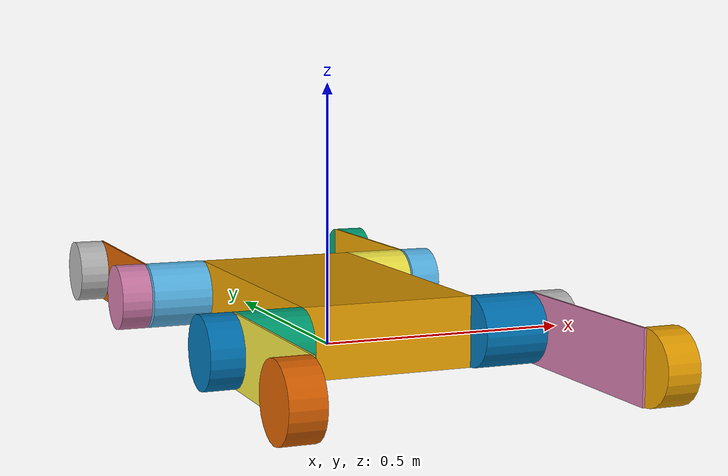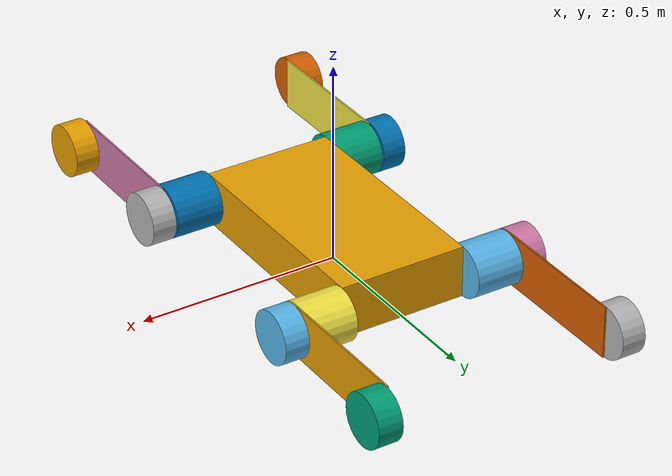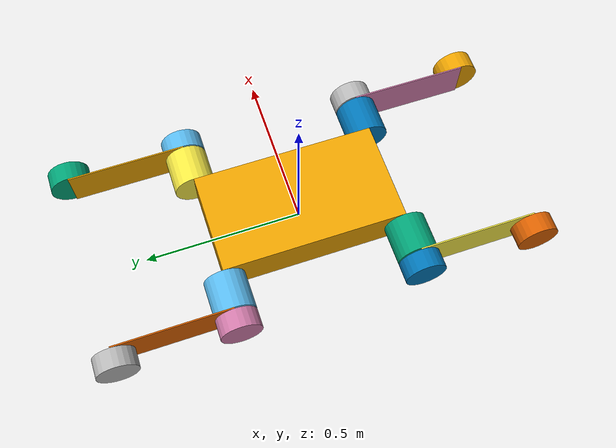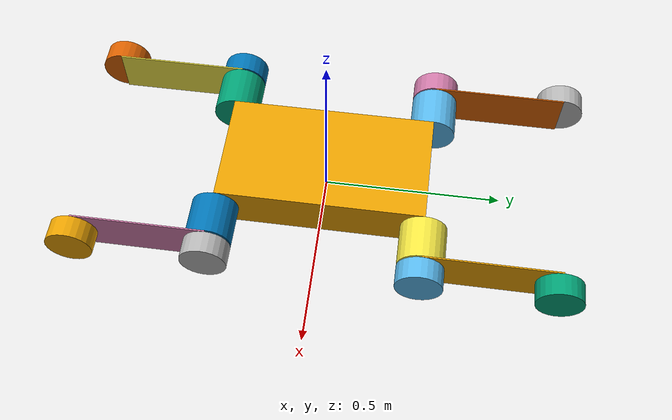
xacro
<?xml version="1.0" ?>
<!--       simulation model of crawler robot in UGVC 2016         -->
<robot name="ugvc_crawler_robot">

  <joint name="ugvc_crawler_robot__right_rear" type="revolute">
    <parent link="ugvc_crawler_robot__chassis"/>
    <child link="ugvc_crawler_robot__right_rear_wheel"/>
    <origin rpy="0      1.5707  0" xyz="-0.16     0.28999  0.065"/>
    <axis xyz="9.00000000e-05   0.00000000e+00   1.00000000e+00"/>
    <limit effort="0" lower="0" upper="0" velocity="0"/>
  </joint>

  <joint name="ugvc_crawler_robot__right_front" type="revolute">
    <parent link="ugvc_crawler_robot__chassis"/>
    <child link="ugvc_crawler_robot__right_front_wheel"/>
    <origin rpy="0      1.5707  0" xyz="-0.16    -0.28999  0.065"/>
    <axis xyz="9.00000000e-05   0.00000000e+00   1.00000000e+00"/>
    <limit effort="0" lower="0" upper="0" velocity="0"/>
  </joint>
  <joint name="ugvc_crawler_robot__left_rear" type="revolute">
    <parent link="ugvc_crawler_robot__chassis"/>
    <child link="ugvc_crawler_robot__left_rear_wheel"/>
    <origin rpy="0      1.5707  0" xyz="0.16     0.28999  0.06499"/>
    <axis xyz="9.00000000e-05   0.00000000e+00   1.00000000e+00"/>
    <limit effort="0" lower="0" upper="0" velocity="0"/>
  </joint>
  <joint name="ugvc_crawler_robot__left_front" type="revolute">
    <parent link="ugvc_crawler_robot__chassis"/>
    <child link="ugvc_crawler_robot__left_front_wheel"/>
    <origin rpy="0      1.5707  0" xyz="0.16    -0.28999  0.06499"/>
    <axis xyz="9.00000000e-05   0.00000000e+00   1.00000000e+00"/>
    <limit effort="0" lower="0" upper="0" velocity="0"/>
  </joint>
  <joint name="ugvc_crawler_robot__left_rear_flipper" type="revolute">
    <parent link="ugvc_crawler_robot__chassis"/>
    <child link="ugvc_crawler_robot__left_rear_flipper"/>
    <origin rpy="0  0  0" xyz="0.28199  0.28999  0.067"/>
    <axis xyz="1  0  0"/>
    <limit effort="0.0" lower="0.0" upper="0.0" velocity="1.0"/>
  </joint>
  <joint name="ugvc_crawler_robot__right_rear_flipper" type="revolute">
    <parent link="ugvc_crawler_robot__chassis"/>
    <child link="ugvc_crawler_robot__right_rear_flipper"/>
    <origin rpy="0  0  0" xyz="-0.28199  0.28999  0.063"/>
    <axis xyz="1  0  0"/>
    <limit effort="0.0" lower="0.0" upper="0.0" velocity="1.0"/>
  </joint>
  <joint name="ugvc_crawler_robot__left_front_flipper" type="revolute">
    <parent link="ugvc_crawler_robot__chassis"/>
    <child link="ugvc_crawler_robot__left_front_flipper"/>
    <origin rpy="0  0  0" xyz="0.28199 -0.28999  0.067"/>
    <axis xyz="1  0  0"/>
    <limit effort="0.0" lower="0.0" upper="0.0" velocity="1.0"/>
  </joint>
  <joint name="ugvc_crawler_robot__right_front_flipper" type="revolute">
    <parent link="ugvc_crawler_robot__chassis"/>
    <child link="ugvc_crawler_robot__right_front_flipper"/>
    <origin rpy="0  0  0" xyz="-0.28199 -0.28999  0.063"/>
    <axis xyz="1  0  0"/>
    <limit effort="0.0" lower="0.0" upper="0.0" velocity="1.0"/>
  </joint>
  <joint name="ugvc_crawler_robot__right_rear_flipper_wheel_1" type="revolute">
    <parent link="ugvc_crawler_robot__right_rear_flipper"/>
    <child link="ugvc_crawler_robot__right_rear_flipper_wheel_1"/>
    <origin rpy="0      1.5707  0" xyz="-0.002  0     0.002"/>
    <axis xyz="9.00000000e-05   0.00000000e+00   1.00000000e+00"/>
    <limit effort="0" lower="0" upper="0" velocity="0"/>
  </joint>
  <joint name="ugvc_crawler_robot__right_rear_flipper_wheel_2" type="revolute">
    <parent link="ugvc_crawler_robot__right_rear_flipper"/>
    <child link="ugvc_crawler_robot__right_rear_flipper_wheel_2"/>
    <origin rpy="0      1.5707  0" xyz="-0.002  0.37   0.002"/>
    <axis xyz="9.00000000e-05   0.00000000e+00   1.00000000e+00"/>
    <limit effort="0" lower="0" upper="0" velocity="0"/>
  </joint>
  <joint name="ugvc_crawler_robot__right_front_flipper_wheel_1" type="revolute">
    <parent link="ugvc_crawler_robot__right_front_flipper"/>
    <child link="ugvc_crawler_robot__right_front_flipper_wheel_1"/>
    <origin rpy="0      1.5707  0" xyz="-0.002  0     0.002"/>
    <axis xyz="9.00000000e-05   0.00000000e+00   1.00000000e+00"/>
    <limit effort="0" lower="0" upper="0" velocity="0"/>
  </joint>
  <joint name="ugvc_crawler_robot__right_front_flipper_wheel_2" type="revolute">
    <parent link="ugvc_crawler_robot__right_front_flipper"/>
    <child link="ugvc_crawler_robot__right_front_flipper_wheel_2"/>
    <origin rpy="0      1.5707  0" xyz="-0.002 -0.37   0.002"/>
    <axis xyz="9.00000000e-05   0.00000000e+00   1.00000000e+00"/>
    <limit effort="0" lower="0" upper="0" velocity="0"/>
  </joint>
  <joint name="ugvc_crawler_robot__left_rear_flipper_wheel_1" type="revolute">
    <parent link="ugvc_crawler_robot__left_rear_flipper"/>
    <child link="ugvc_crawler_robot__left_rear_flipper_wheel_1"/>
    <origin rpy="0      1.5707  0" xyz="0.002  0    -0.002"/>
    <axis xyz="9.00000000e-05   0.00000000e+00   1.00000000e+00"/>
    <limit effort="0" lower="0" upper="0" velocity="0"/>
  </joint>
  <joint name="ugvc_crawler_robot__left_rear_flipper_wheel_2" type="revolute">
    <parent link="ugvc_crawler_robot__left_rear_flipper"/>
    <child link="ugvc_crawler_robot__left_rear_flipper_wheel_2"/>
    <origin rpy="0      1.5707  0" xyz="0.002  0.37  -0.002"/>
    <axis xyz="9.00000000e-05   0.00000000e+00   1.00000000e+00"/>
    <limit effort="0" lower="0" upper="0" velocity="0"/>
  </joint>
  <joint name="ugvc_crawler_robot__left_front_flipper_wheel_1" type="revolute">
    <parent link="ugvc_crawler_robot__left_front_flipper"/>
    <child link="ugvc_crawler_robot__left_front_flipper_wheel_1"/>
    <origin rpy="0      1.5707  0" xyz="0.002  0    -0.002"/>
    <axis xyz="9.00000000e-05   0.00000000e+00   1.00000000e+00"/>
    <limit effort="0" lower="0" upper="0" velocity="0"/>
  </joint>
  <joint name="ugvc_crawler_robot__left_front_flipper_wheel_2" type="revolute">
    <parent link="ugvc_crawler_robot__left_front_flipper"/>
    <child link="ugvc_crawler_robot__left_front_flipper_wheel_2"/>
    <origin rpy="0      1.5707  0" xyz="0.002 -0.37  -0.002"/>
    <axis xyz="9.00000000e-05   0.00000000e+00   1.00000000e+00"/>
    <limit effort="0" lower="0" upper="0" velocity="0"/>
  </joint>

  <link name="ugvc_crawler_robot__chassis">
    <inertial>
      <mass value="20"/>
      <origin rpy="0  0  0" xyz="0     0     0.065"/>
      <inertia ixx="0" ixy="0" ixz="0" iyy="0" iyz="0" izz="0"/>
    </inertial>
    <collision name="ugvc_crawler_robot__collision">
      <origin rpy="0  0  0" xyz="0     0     0.065"/>
      <geometry>
        <box size=".32 .58 .13"/>
      </geometry>
    </collision>
    <visual name="ugvc_crawler_robot__visual">
      <origin rpy="0  0  0" xyz="0     0     0.065"/>
      <geometry>
        <box size=".32 .58 .13"/>
      </geometry>
    </visual>
  </link>

  <link name="ugvc_crawler_robot__right_rear_wheel">
    <inertial>
      <mass value="1.0"/>
      <origin rpy="0  0  0" xyz="0    0   -0.06"/>
      <inertia ixx="0.001" ixy="0" ixz="0" iyy="0.001" iyz="0" izz="0.001"/>
    </inertial>
    <collision name="ugvc_crawler_robot__collision">
      <origin rpy="0  0  0" xyz="0    0   -0.06"/>
      <geometry>
        <cylinder length=".12" radius=".065"/>
      </geometry>
    </collision>
    <visual name="ugvc_crawler_robot__visual">
      <origin rpy="0  0  0" xyz="0    0   -0.06"/>
      <geometry>
        <cylinder length=".12" radius=".065"/>
      </geometry>
    </visual>
  </link>
  <link name="ugvc_crawler_robot__right_front_wheel">
    <inertial>
      <mass value="1.0"/>
      <origin rpy="0  0  0" xyz="0    0   -0.06"/>
      <inertia ixx="0.001" ixy="0" ixz="0" iyy="0.001" iyz="0" izz="0.001"/>
    </inertial>
    <collision name="ugvc_crawler_robot__collision">
      <origin rpy="0  0  0" xyz="0    0   -0.06"/>
      <geometry>
        <cylinder length=".12" radius=".065"/>
      </geometry>
    </collision>
    <visual name="ugvc_crawler_robot__visual">
      <origin rpy="0  0  0" xyz="0    0   -0.06"/>
      <geometry>
        <cylinder length=".12" radius=".065"/>
      </geometry>
    </visual>
  </link>
  <link name="ugvc_crawler_robot__left_rear_wheel">
    <inertial>
      <mass value="1.0"/>
      <origin rpy="0  0  0" xyz="0    0    0.06"/>
      <inertia ixx="0.001" ixy="0" ixz="0" iyy="0.001" iyz="0" izz="0.001"/>
    </inertial>
    <collision name="ugvc_crawler_robot__collision">
      <origin rpy="0  0  0" xyz="0    0    0.06"/>
      <geometry>
        <cylinder length=".12" radius=".065"/>
      </geometry>
    </collision>
    <visual name="ugvc_crawler_robot__visual">
      <origin rpy="0  0  0" xyz="0    0    0.06"/>
      <geometry>
        <cylinder length=".12" radius=".065"/>
      </geometry>
    </visual>
  </link>
  <link name="ugvc_crawler_robot__left_front_wheel">
    <inertial>
      <mass value="1.0"/>
      <origin rpy="0  0  0" xyz="0    0    0.06"/>
      <inertia ixx="0.001" ixy="0" ixz="0" iyy="0.001" iyz="0" izz="0.001"/>
    </inertial>
    <collision name="ugvc_crawler_robot__collision">
      <origin rpy="0  0  0" xyz="0    0    0.06"/>
      <geometry>
        <cylinder length=".12" radius=".065"/>
      </geometry>
    </collision>
    <visual name="ugvc_crawler_robot__visual">
      <origin rpy="0  0  0" xyz="0    0    0.06"/>
      <geometry>
        <cylinder length=".12" radius=".065"/>
      </geometry>
    </visual>
  </link>
  <link name="ugvc_crawler_robot__right_rear_flipper">
    <inertial>
      <mass value="0"/>
      <origin rpy="0  0  0" xyz="0     0.185  0.002"/>
      <inertia ixx="0" ixy="0" ixz="0" iyy="0" iyz="0" izz="0"/>
    </inertial>
    <collision name="ugvc_crawler_robot__collision">
      <origin rpy="0  0  0" xyz="0     0.185  0.002"/>
      <geometry>
        <box size=".004 .37 .13"/>
      </geometry>
    </collision>
    <visual name="ugvc_crawler_robot__visual">
      <origin rpy="0  0  0" xyz="0     0.185  0.002"/>
      <geometry>
        <box size=".004 .37 .13"/>
      </geometry>
    </visual>
  </link>
  <link name="ugvc_crawler_robot__right_rear_flipper_wheel_1">
    <inertial>
      <mass value="1.0"/>
      <origin rpy="0  0  0" xyz="0    0   -0.03"/>
      <inertia ixx="0.001" ixy="0" ixz="0" iyy="0.001" iyz="0" izz="0.001"/>
    </inertial>
    <collision name="ugvc_crawler_robot__collision">
      <origin rpy="0  0  0" xyz="0    0   -0.03"/>
      <geometry>
        <cylinder length=".06" radius=".065"/>
      </geometry>
    </collision>
    <visual name="ugvc_crawler_robot__visual">
      <origin rpy="0  0  0" xyz="0    0   -0.03"/>
      <geometry>
        <cylinder length=".06" radius=".065"/>
      </geometry>
    </visual>
  </link>
  <link name="ugvc_crawler_robot__right_rear_flipper_wheel_2">
    <inertial>
      <mass value="1.0"/>
      <origin rpy="0  0  0" xyz="0    0   -0.03"/>
      <inertia ixx="0.001" ixy="0" ixz="0" iyy="0.001" iyz="0" izz="0.001"/>
    </inertial>
    <collision name="ugvc_crawler_robot__collision">
      <origin rpy="0  0  0" xyz="0    0   -0.03"/>
      <geometry>
        <cylinder length=".06" radius=".065"/>
      </geometry>
    </collision>
    <visual name="ugvc_crawler_robot__visual">
      <origin rpy="0  0  0" xyz="0    0   -0.03"/>
      <geometry>
        <cylinder length=".06" radius=".065"/>
      </geometry>
    </visual>
  </link>
  <link name="ugvc_crawler_robot__left_rear_flipper">
    <inertial>
      <mass value="0"/>
      <origin rpy="0  0  0" xyz="0     0.185 -0.002"/>
      <inertia ixx="0" ixy="0" ixz="0" iyy="0" iyz="0" izz="0"/>
    </inertial>
    <collision name="ugvc_crawler_robot__collision">
      <origin rpy="0  0  0" xyz="0     0.185 -0.002"/>
      <geometry>
        <box size=".004 .37 .13"/>
      </geometry>
    </collision>
    <visual name="ugvc_crawler_robot__visual">
      <origin rpy="0  0  0" xyz="0     0.185 -0.002"/>
      <geometry>
        <box size=".004 .37 .13"/>
      </geometry>
    </visual>
  </link>
  <link name="ugvc_crawler_robot__left_rear_flipper_wheel_1">
    <inertial>
      <mass value="1.0"/>
      <origin rpy="0  0  0" xyz="0    0    0.03"/>
      <inertia ixx="0.001" ixy="0" ixz="0" iyy="0.001" iyz="0" izz="0.001"/>
    </inertial>
    <collision name="ugvc_crawler_robot__collision">
      <origin rpy="0  0  0" xyz="0    0    0.03"/>
      <geometry>
        <cylinder length=".06" radius=".065"/>
      </geometry>
    </collision>
    <visual name="ugvc_crawler_robot__visual">
      <origin rpy="0  0  0" xyz="0    0    0.03"/>
      <geometry>
        <cylinder length=".06" radius=".065"/>
      </geometry>
    </visual>
  </link>
  <link name="ugvc_crawler_robot__left_rear_flipper_wheel_2">
    <inertial>
      <mass value="1.0"/>
      <origin rpy="0  0  0" xyz="0    0    0.03"/>
      <inertia ixx="0.001" ixy="0" ixz="0" iyy="0.001" iyz="0" izz="0.001"/>
    </inertial>
    <collision name="ugvc_crawler_robot__collision">
      <origin rpy="0  0  0" xyz="0    0    0.03"/>
      <geometry>
        <cylinder length=".06" radius=".065"/>
      </geometry>
    </collision>
    <visual name="ugvc_crawler_robot__visual">
      <origin rpy="0  0  0" xyz="0    0    0.03"/>
      <geometry>
        <cylinder length=".06" radius=".065"/>
      </geometry>
    </visual>
  </link>
  <link name="ugvc_crawler_robot__right_front_flipper">
    <inertial>
      <mass value="0"/>
      <origin rpy="0  0  0" xyz="0    -0.185  0.002"/>
      <inertia ixx="0" ixy="0" ixz="0" iyy="0" iyz="0" izz="0"/>
    </inertial>
    <collision name="ugvc_crawler_robot__collision">
      <origin rpy="0  0  0" xyz="0    -0.185  0.002"/>
      <geometry>
        <box size=".004 .37 .13"/>
      </geometry>
    </collision>
    <visual name="ugvc_crawler_robot__visual">
      <origin rpy="0  0  0" xyz="0    -0.185  0.002"/>
      <geometry>
        <box size=".004 .37 .13"/>
      </geometry>
    </visual>
  </link>
  <link name="ugvc_crawler_robot__right_front_flipper_wheel_1">
    <inertial>
      <mass value="1.0"/>
      <origin rpy="0  0  0" xyz="0    0   -0.03"/>
      <inertia ixx="0.001" ixy="0" ixz="0" iyy="0.001" iyz="0" izz="0.001"/>
    </inertial>
    <collision name="ugvc_crawler_robot__collision">
      <origin rpy="0  0  0" xyz="0    0   -0.03"/>
      <geometry>
        <cylinder length=".06" radius=".065"/>
      </geometry>
    </collision>
    <visual name="ugvc_crawler_robot__visual">
      <origin rpy="0  0  0" xyz="0    0   -0.03"/>
      <geometry>
        <cylinder length=".06" radius=".065"/>
      </geometry>
    </visual>
  </link>
  <link name="ugvc_crawler_robot__right_front_flipper_wheel_2">
    <inertial>
      <mass value="1.0"/>
      <origin rpy="0  0  0" xyz="0    0   -0.03"/>
      <inertia ixx="0.001" ixy="0" ixz="0" iyy="0.001" iyz="0" izz="0.001"/>
    </inertial>
    <collision name="ugvc_crawler_robot__collision">
      <origin rpy="0  0  0" xyz="0    0   -0.03"/>
      <geometry>
        <cylinder length=".06" radius=".065"/>
      </geometry>
    </collision>
    <visual name="ugvc_crawler_robot__visual">
      <origin rpy="0  0  0" xyz="0    0   -0.03"/>
      <geometry>
        <cylinder length=".06" radius=".065"/>
      </geometry>
    </visual>
  </link>
  <link name="ugvc_crawler_robot__left_front_flipper">
    <inertial>
      <mass value="0"/>
      <origin rpy="0  0  0" xyz="0    -0.185 -0.002"/>
      <inertia ixx="0" ixy="0" ixz="0" iyy="0" iyz="0" izz="0"/>
    </inertial>
    <collision name="ugvc_crawler_robot__collision">
      <origin rpy="0  0  0" xyz="0    -0.185 -0.002"/>
      <geometry>
        <box size=".004 .37 .13"/>
      </geometry>
    </collision>
    <visual name="ugvc_crawler_robot__visual">
      <origin rpy="0  0  0" xyz="0    -0.185 -0.002"/>
      <geometry>
        <box size=".004 .37 .13"/>
      </geometry>
    </visual>
  </link>
  <link name="ugvc_crawler_robot__left_front_flipper_wheel_1">
    <inertial>
      <mass value="1.0"/>
      <origin rpy="0  0  0" xyz="0    0    0.03"/>
      <inertia ixx="0.001" ixy="0" ixz="0" iyy="0.001" iyz="0" izz="0.001"/>
    </inertial>
    <collision name="ugvc_crawler_robot__collision">
      <origin rpy="0  0  0" xyz="0    0    0.03"/>
      <geometry>
        <cylinder length=".06" radius=".065"/>
      </geometry>
    </collision>
    <visual name="ugvc_crawler_robot__visual">
      <origin rpy="0  0  0" xyz="0    0    0.03"/>
      <geometry>
        <cylinder length=".06" radius=".065"/>
      </geometry>
    </visual>
  </link>
  <link name="ugvc_crawler_robot__left_front_flipper_wheel_2">
    <inertial>
      <mass value="1.0"/>
      <origin rpy="0  0  0" xyz="0    0    0.03"/>
      <inertia ixx="0.001" ixy="0" ixz="0" iyy="0.001" iyz="0" izz="0.001"/>
    </inertial>
    <collision name="ugvc_crawler_robot__collision">
      <origin rpy="0  0  0" xyz="0    0    0.03"/>
      <geometry>
        <cylinder length=".06" radius=".065"/>
      </geometry>
    </collision>
    <visual name="ugvc_crawler_robot__visual">
      <origin rpy="0  0  0" xyz="0    0    0.03"/>
      <geometry>
        <cylinder length=".06" radius=".065"/>
      </geometry>
    </visual>
  </link>
</robot>
